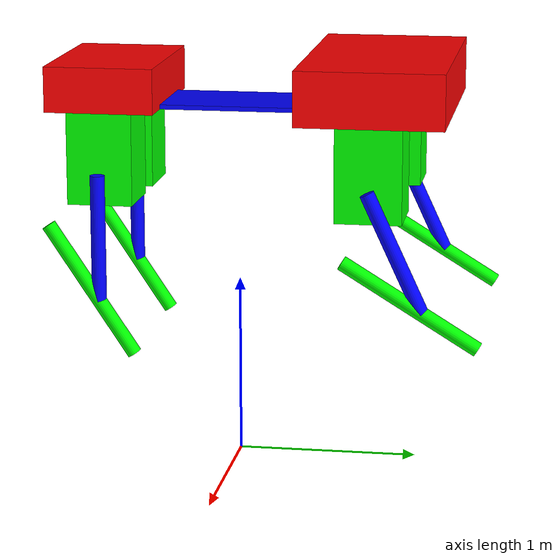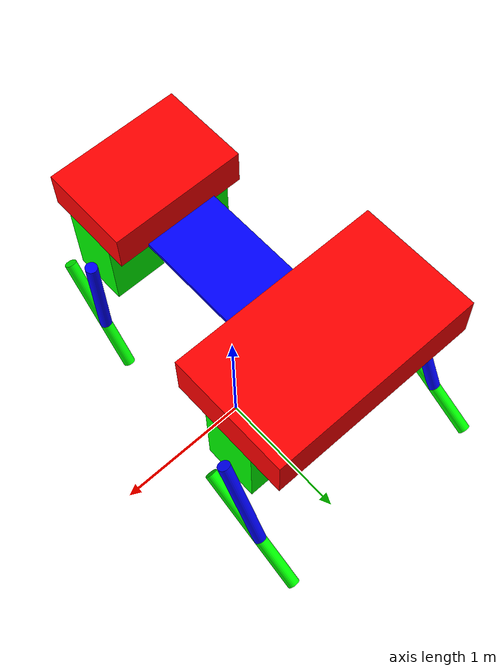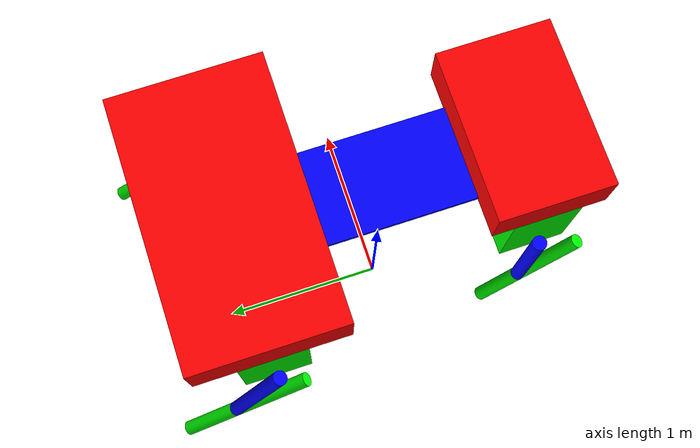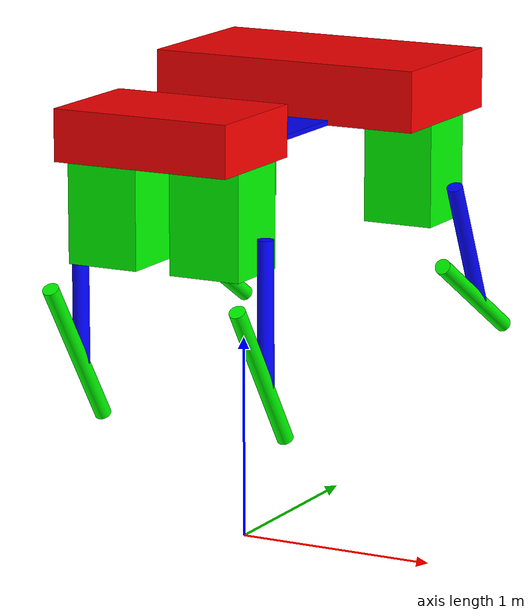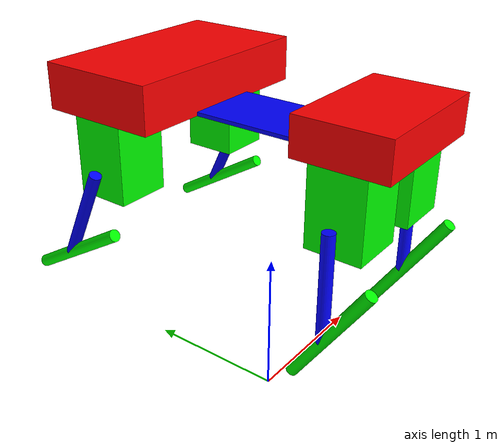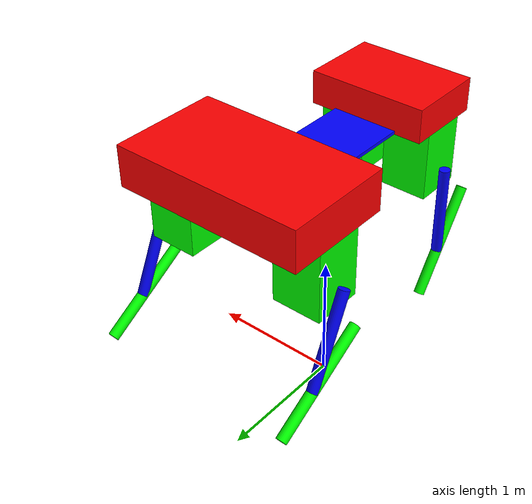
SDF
<sdf version="1.4">
  <model name="tigrillo">
    <static>False</static>
    <link name="body_front">
      <pose>0 0.8 2.15 0 0 0</pose>
      <inertial>
        <mass>0.179</mass>
        <inertia>
          <ixx>0.010889166666666669</ixx>
          <ixy>0</ixy>
          <ixz>0</ixz>
          <iyy>0.030579166666666664</iyy>
          <iyz>0</iyz>
          <izz>0.03878333333333333</izz>
        </inertia>
      </inertial>
      <collision name="body_frontcol">
        <geometry>
          <box>
            <size>1.4 0.8 0.3</size>
          </box>
        </geometry>
      </collision>
      <visual name="body_frontvis">
        <geometry>
          <box>
            <size>1.4 0.8 0.3</size>
          </box>
        </geometry>
        <material>
          <ambient>1 0 0 1</ambient>
          <diffuse>1 0 0 1</diffuse>
          <specular>1 0 0 1</specular>
          <emissive>0 0 0 0</emissive>
        </material>
      </visual>
    </link>
    <link name="body_middle">
      <pose>0 0 2.0125 0 0 0</pose>
      <inertial>
        <mass>0.03</mass>
        <inertia>
          <ixx>0.0016015625000000003</ixx>
          <ixy>0</ixy>
          <ixz>0</ixz>
          <iyy>0.0006265625</iyy>
          <iyz>0</iyz>
          <izz>0.0022250000000000004</izz>
        </inertia>
      </inertial>
      <collision name="body_middlecol">
        <geometry>
          <box>
            <size>0.5 0.8 0.025</size>
          </box>
        </geometry>
      </collision>
      <visual name="body_middlevis">
        <geometry>
          <box>
            <size>0.5 0.8 0.025</size>
          </box>
        </geometry>
        <material>
          <ambient>0 0 1 1</ambient>
          <diffuse>0 0 1 1</diffuse>
          <specular>0 0 1 1</specular>
          <emissive>0 0 0 0</emissive>
        </material>
      </visual>
    </link>
    <link name="body_hind">
      <pose>0 -0.7 2.125 0 0 0</pose>
      <inertial>
        <mass>0.179</mass>
        <inertia>
          <ixx>0.006302291666666666</ixx>
          <ixy>0</ixy>
          <ixz>0</ixz>
          <iyy>0.013014791666666668</iyy>
          <iyz>0</iyz>
          <izz>0.0174525</izz>
        </inertia>
      </inertial>
      <collision name="body_hindcol">
        <geometry>
          <box>
            <size>0.9 0.6 0.25</size>
          </box>
        </geometry>
      </collision>
      <visual name="body_hindvis">
        <geometry>
          <box>
            <size>0.9 0.6 0.25</size>
          </box>
        </geometry>
        <material>
          <ambient>1 0 0 1</ambient>
          <diffuse>1 0 0 1</diffuse>
          <specular>1 0 0 1</specular>
          <emissive>0 0 0 0</emissive>
        </material>
      </visual>
    </link>
    <link name="FLM">
      <pose>-0.52 0.8 1.7469999999999999 0 0 0</pose>
      <inertial>
        <mass>0.067</mass>
        <inertia>
          <ixx>0.0021531343333333333</ixx>
          <ixy>0</ixy>
          <ixz>0</ixz>
          <iyy>0.0021531343333333333</iyy>
          <iyz>0</iyz>
          <izz>0.0014471999999999998</izz>
        </inertia>
      </inertial>
      <collision name="FLM_col">
        <geometry>
          <box>
            <size>0.36 0.36 0.506</size>
          </box>
        </geometry>
      </collision>
      <visual name="FLM_vis">
        <geometry>
          <box>
            <size>0.36 0.36 0.506</size>
          </box>
        </geometry>
        <material>
          <ambient>0 1 0 1</ambient>
          <diffuse>0 1 0 1</diffuse>
          <specular>0 1 0 1</specular>
          <emissive>0 0 0 0</emissive>
        </material>
      </visual>
    </link>
    <link name="FLU">
      <pose>-0.745 0.8 1.67 0.4363323129985824 0 0</pose>
      <inertial>
        <pose>0 0 -0.35 0 0 0</pose>
        <mass>0.0035185837720205686</mass>
        <inertia>
          <ixx>0.00014508293753298144</ixx>
          <ixy>0</ixy>
          <ixz>0</ixz>
          <iyy>0.00014508293753298144</iyy>
          <iyz>0</iyz>
          <izz>2.814867017616455e-06</izz>
        </inertia>
      </inertial>
      <collision name="FLU_col">
        <pose>0 0 -0.35 0 0 0</pose>
        <geometry>
          <cylinder>
            <radius>0.04</radius>
            <length>0.7</length>
          </cylinder>
        </geometry>
      </collision>
      <visual name="FLU_vis">
        <pose>0 0 -0.35 0 0 0</pose>
        <geometry>
          <cylinder>
            <radius>0.04</radius>
            <length>0.7</length>
          </cylinder>
        </geometry>
        <material>
          <ambient>0 0 1 1</ambient>
          <diffuse>0 0 1 1</diffuse>
          <specular>0 0 1 1</specular>
          <emissive>0 0 0 0</emissive>
        </material>
      </visual>
    </link>
    <link name="FLD">
      <pose>-0.745 1.0958327832184898 1.0355845490743452 1.0220178564557332 0 0</pose>
      <inertial>
        <pose>0 0 0.07500000000000001 0 0 0</pose>
        <mass>0.004272566008882119</mass>
        <inertia>
          <ixx>0.0002589531048549971</ixx>
          <ixy>0</ixy>
          <ixz>0</ixz>
          <iyy>0.0002589531048549971</iyy>
          <iyz>0</iyz>
          <izz>3.4180528071056957e-06</izz>
        </inertia>
      </inertial>
      <collision name="FLD_col">
        <pose>0 0 0.07500000000000001 0 0 0</pose>
        <geometry>
          <cylinder>
            <radius>0.04</radius>
            <length>0.85</length>
          </cylinder>
        </geometry>
      </collision>
      <visual name="FLD_vis">
        <pose>0 0 0.07500000000000001 0 0 0</pose>
        <geometry>
          <cylinder>
            <radius>0.04</radius>
            <length>0.85</length>
          </cylinder>
        </geometry>
        <material>
          <ambient>0 1 0 1</ambient>
          <diffuse>0 1 0 1</diffuse>
          <specular>0 1 0 1</specular>
          <emissive>0 0 0 0</emissive>
        </material>
      </visual>
    </link>
    <link name="BLM">
      <pose>-0.27 -0.7 1.7469999999999999 0 0 0</pose>
      <inertial>
        <mass>0.067</mass>
        <inertia>
          <ixx>0.0021531343333333333</ixx>
          <ixy>0</ixy>
          <ixz>0</ixz>
          <iyy>0.0021531343333333333</iyy>
          <iyz>0</iyz>
          <izz>0.0014471999999999998</izz>
        </inertia>
      </inertial>
      <collision name="BLM_col">
        <geometry>
          <box>
            <size>0.36 0.36 0.506</size>
          </box>
        </geometry>
      </collision>
      <visual name="BLM_vis">
        <geometry>
          <box>
            <size>0.36 0.36 0.506</size>
          </box>
        </geometry>
        <material>
          <ambient>0 1 0 1</ambient>
          <diffuse>0 1 0 1</diffuse>
          <specular>0 1 0 1</specular>
          <emissive>0 0 0 0</emissive>
        </material>
      </visual>
    </link>
    <link name="BLU">
      <pose>-0.495 -0.7 1.67 0.0 0 0</pose>
      <inertial>
        <pose>0 0 -0.35 0 0 0</pose>
        <mass>0.0035185837720205686</mass>
        <inertia>
          <ixx>0.00014508293753298144</ixx>
          <ixy>0</ixy>
          <ixz>0</ixz>
          <iyy>0.00014508293753298144</iyy>
          <iyz>0</iyz>
          <izz>2.814867017616455e-06</izz>
        </inertia>
      </inertial>
      <collision name="BLU_col">
        <pose>0 0 -0.35 0 0 0</pose>
        <geometry>
          <cylinder>
            <radius>0.04</radius>
            <length>0.7</length>
          </cylinder>
        </geometry>
      </collision>
      <visual name="BLU_vis">
        <pose>0 0 -0.35 0 0 0</pose>
        <geometry>
          <cylinder>
            <radius>0.04</radius>
            <length>0.7</length>
          </cylinder>
        </geometry>
        <material>
          <ambient>0 0 1 1</ambient>
          <diffuse>0 0 1 1</diffuse>
          <specular>0 0 1 1</specular>
          <emissive>0 0 0 0</emissive>
        </material>
      </visual>
    </link>
    <link name="BLD">
      <pose>-0.495 -0.7 0.97 0.5856855434571508 0 0</pose>
      <inertial>
        <pose>0 0 0.07500000000000001 0 0 0</pose>
        <mass>0.004272566008882119</mass>
        <inertia>
          <ixx>0.0002589531048549971</ixx>
          <ixy>0</ixy>
          <ixz>0</ixz>
          <iyy>0.0002589531048549971</iyy>
          <iyz>0</iyz>
          <izz>3.4180528071056957e-06</izz>
        </inertia>
      </inertial>
      <collision name="BLD_col">
        <pose>0 0 0.07500000000000001 0 0 0</pose>
        <geometry>
          <cylinder>
            <radius>0.04</radius>
            <length>0.85</length>
          </cylinder>
        </geometry>
      </collision>
      <visual name="BLD_vis">
        <pose>0 0 0.07500000000000001 0 0 0</pose>
        <geometry>
          <cylinder>
            <radius>0.04</radius>
            <length>0.85</length>
          </cylinder>
        </geometry>
        <material>
          <ambient>0 1 0 1</ambient>
          <diffuse>0 1 0 1</diffuse>
          <specular>0 1 0 1</specular>
          <emissive>0 0 0 0</emissive>
        </material>
      </visual>
    </link>
    <link name="FRM">
      <pose>0.52 0.8 1.7469999999999999 0 0 0</pose>
      <inertial>
        <mass>0.067</mass>
        <inertia>
          <ixx>0.0021531343333333333</ixx>
          <ixy>0</ixy>
          <ixz>0</ixz>
          <iyy>0.0021531343333333333</iyy>
          <iyz>0</iyz>
          <izz>0.0014471999999999998</izz>
        </inertia>
      </inertial>
      <collision name="FRM_col">
        <geometry>
          <box>
            <size>0.36 0.36 0.506</size>
          </box>
        </geometry>
      </collision>
      <visual name="FRM_vis">
        <geometry>
          <box>
            <size>0.36 0.36 0.506</size>
          </box>
        </geometry>
        <material>
          <ambient>0 1 0 1</ambient>
          <diffuse>0 1 0 1</diffuse>
          <specular>0 1 0 1</specular>
          <emissive>0 0 0 0</emissive>
        </material>
      </visual>
    </link>
    <link name="FRU">
      <pose>0.745 0.8 1.67 0.4363323129985824 0 0</pose>
      <inertial>
        <pose>0 0 -0.35 0 0 0</pose>
        <mass>0.0035185837720205686</mass>
        <inertia>
          <ixx>0.00014508293753298144</ixx>
          <ixy>0</ixy>
          <ixz>0</ixz>
          <iyy>0.00014508293753298144</iyy>
          <iyz>0</iyz>
          <izz>2.814867017616455e-06</izz>
        </inertia>
      </inertial>
      <collision name="FRU_col">
        <pose>0 0 -0.35 0 0 0</pose>
        <geometry>
          <cylinder>
            <radius>0.04</radius>
            <length>0.7</length>
          </cylinder>
        </geometry>
      </collision>
      <visual name="FRU_vis">
        <pose>0 0 -0.35 0 0 0</pose>
        <geometry>
          <cylinder>
            <radius>0.04</radius>
            <length>0.7</length>
          </cylinder>
        </geometry>
        <material>
          <ambient>0 0 1 1</ambient>
          <diffuse>0 0 1 1</diffuse>
          <specular>0 0 1 1</specular>
          <emissive>0 0 0 0</emissive>
        </material>
      </visual>
    </link>
    <link name="FRD">
      <pose>0.745 1.0958327832184898 1.0355845490743452 1.0220178564557332 0 0</pose>
      <inertial>
        <pose>0 0 0.07500000000000001 0 0 0</pose>
        <mass>0.004272566008882119</mass>
        <inertia>
          <ixx>0.0002589531048549971</ixx>
          <ixy>0</ixy>
          <ixz>0</ixz>
          <iyy>0.0002589531048549971</iyy>
          <iyz>0</iyz>
          <izz>3.4180528071056957e-06</izz>
        </inertia>
      </inertial>
      <collision name="FRD_col">
        <pose>0 0 0.07500000000000001 0 0 0</pose>
        <geometry>
          <cylinder>
            <radius>0.04</radius>
            <length>0.85</length>
          </cylinder>
        </geometry>
      </collision>
      <visual name="FRD_vis">
        <pose>0 0 0.07500000000000001 0 0 0</pose>
        <geometry>
          <cylinder>
            <radius>0.04</radius>
            <length>0.85</length>
          </cylinder>
        </geometry>
        <material>
          <ambient>0 1 0 1</ambient>
          <diffuse>0 1 0 1</diffuse>
          <specular>0 1 0 1</specular>
          <emissive>0 0 0 0</emissive>
        </material>
      </visual>
    </link>
    <link name="BRM">
      <pose>0.27 -0.7 1.7469999999999999 0 0 0</pose>
      <inertial>
        <mass>0.067</mass>
        <inertia>
          <ixx>0.0021531343333333333</ixx>
          <ixy>0</ixy>
          <ixz>0</ixz>
          <iyy>0.0021531343333333333</iyy>
          <iyz>0</iyz>
          <izz>0.0014471999999999998</izz>
        </inertia>
      </inertial>
      <collision name="BRM_col">
        <geometry>
          <box>
            <size>0.36 0.36 0.506</size>
          </box>
        </geometry>
      </collision>
      <visual name="BRM_vis">
        <geometry>
          <box>
            <size>0.36 0.36 0.506</size>
          </box>
        </geometry>
        <material>
          <ambient>0 1 0 1</ambient>
          <diffuse>0 1 0 1</diffuse>
          <specular>0 1 0 1</specular>
          <emissive>0 0 0 0</emissive>
        </material>
      </visual>
    </link>
    <link name="BRU">
      <pose>0.495 -0.7 1.67 0.0 0 0</pose>
      <inertial>
        <pose>0 0 -0.35 0 0 0</pose>
        <mass>0.0035185837720205686</mass>
        <inertia>
          <ixx>0.00014508293753298144</ixx>
          <ixy>0</ixy>
          <ixz>0</ixz>
          <iyy>0.00014508293753298144</iyy>
          <iyz>0</iyz>
          <izz>2.814867017616455e-06</izz>
        </inertia>
      </inertial>
      <collision name="BRU_col">
        <pose>0 0 -0.35 0 0 0</pose>
        <geometry>
          <cylinder>
            <radius>0.04</radius>
            <length>0.7</length>
          </cylinder>
        </geometry>
      </collision>
      <visual name="BRU_vis">
        <pose>0 0 -0.35 0 0 0</pose>
        <geometry>
          <cylinder>
            <radius>0.04</radius>
            <length>0.7</length>
          </cylinder>
        </geometry>
        <material>
          <ambient>0 0 1 1</ambient>
          <diffuse>0 0 1 1</diffuse>
          <specular>0 0 1 1</specular>
          <emissive>0 0 0 0</emissive>
        </material>
      </visual>
    </link>
    <link name="BRD">
      <pose>0.495 -0.7 0.97 0.5856855434571508 0 0</pose>
      <inertial>
        <pose>0 0 0.07500000000000001 0 0 0</pose>
        <mass>0.004272566008882119</mass>
        <inertia>
          <ixx>0.0002589531048549971</ixx>
          <ixy>0</ixy>
          <ixz>0</ixz>
          <iyy>0.0002589531048549971</iyy>
          <iyz>0</iyz>
          <izz>3.4180528071056957e-06</izz>
        </inertia>
      </inertial>
      <collision name="BRD_col">
        <pose>0 0 0.07500000000000001 0 0 0</pose>
        <geometry>
          <cylinder>
            <radius>0.04</radius>
            <length>0.85</length>
          </cylinder>
        </geometry>
      </collision>
      <visual name="BRD_vis">
        <pose>0 0 0.07500000000000001 0 0 0</pose>
        <geometry>
          <cylinder>
            <radius>0.04</radius>
            <length>0.85</length>
          </cylinder>
        </geometry>
        <material>
          <ambient>0 1 0 1</ambient>
          <diffuse>0 1 0 1</diffuse>
          <specular>0 1 0 1</specular>
          <emissive>0 0 0 0</emissive>
        </material>
      </visual>
    </link>
    <joint name="body_front_J" type="fixed">
      <parent>body_middle</parent>
      <child>body_front</child>
    </joint>
    <joint name="body_hind_J" type="fixed">
      <parent>body_middle</parent>
      <child>body_hind</child>
    </joint>
    <joint name="FLMJ" type="fixed">
      <parent>body_front</parent>
      <child>FLM</child>
    </joint>
    <joint name="FLUJ" type="revolute">
      <parent>FLM</parent>
      <child>FLU</child>
      <axis>
        <xyz>1 0 0</xyz>
        <dynamics>
          <damping>0.2</damping>
        </dynamics>
        <limit>
          <lower>-2.007128639793479</lower>
          <upper>1.1344640137963142</upper>
        </limit>
      </axis>
    </joint>
    <joint name="FLDJ" type="fixed">
      <parent>FLU</parent>
      <child>FLD</child>
      <axis>
        <xyz>1 0 0</xyz>
        <dynamics>
          <damping>0.2</damping>
          <spring_stiffness>233.9349247139039</spring_stiffness>
        </dynamics>
        <limit>
          <lower>-0.1</lower>
          <upper>1.5707963267948966</upper>
        </limit>
      </axis>
    </joint>
    <joint name="BLMJ" type="fixed">
      <parent>body_hind</parent>
      <child>BLM</child>
    </joint>
    <joint name="BLUJ" type="revolute">
      <parent>BLM</parent>
      <child>BLU</child>
      <axis>
        <xyz>1 0 0</xyz>
        <dynamics>
          <damping>0.2</damping>
        </dynamics>
        <limit>
          <lower>-1.5707963267948966</lower>
          <upper>1.5707963267948966</upper>
        </limit>
      </axis>
    </joint>
    <joint name="BLDJ" type="fixed">
      <parent>BLU</parent>
      <child>BLD</child>
      <axis>
        <xyz>1 0 0</xyz>
        <dynamics>
          <damping>0.2</damping>
          <spring_stiffness>233.9349247139039</spring_stiffness>
        </dynamics>
        <limit>
          <lower>-0.1</lower>
          <upper>1.5707963267948966</upper>
        </limit>
      </axis>
    </joint>
    <joint name="FRMJ" type="fixed">
      <parent>body_front</parent>
      <child>FRM</child>
    </joint>
    <joint name="FRUJ" type="revolute">
      <parent>FRM</parent>
      <child>FRU</child>
      <axis>
        <xyz>1 0 0</xyz>
        <dynamics>
          <damping>0.2</damping>
        </dynamics>
        <limit>
          <lower>-2.007128639793479</lower>
          <upper>1.1344640137963142</upper>
        </limit>
      </axis>
    </joint>
    <joint name="FRDJ" type="fixed">
      <parent>FRU</parent>
      <child>FRD</child>
      <axis>
        <xyz>1 0 0</xyz>
        <dynamics>
          <damping>0.2</damping>
          <spring_stiffness>233.9349247139039</spring_stiffness>
        </dynamics>
        <limit>
          <lower>-0.1</lower>
          <upper>1.5707963267948966</upper>
        </limit>
      </axis>
    </joint>
    <joint name="BRMJ" type="fixed">
      <parent>body_hind</parent>
      <child>BRM</child>
    </joint>
    <joint name="BRUJ" type="revolute">
      <parent>BRM</parent>
      <child>BRU</child>
      <axis>
        <xyz>1 0 0</xyz>
        <dynamics>
          <damping>0.2</damping>
        </dynamics>
        <limit>
          <lower>-1.5707963267948966</lower>
          <upper>1.5707963267948966</upper>
        </limit>
      </axis>
    </joint>
    <joint name="BRDJ" type="fixed">
      <parent>BRU</parent>
      <child>BRD</child>
      <axis>
        <xyz>1 0 0</xyz>
        <dynamics>
          <damping>0.2</damping>
          <spring_stiffness>233.9349247139039</spring_stiffness>
        </dynamics>
        <limit>
          <lower>-0.1</lower>
          <upper>1.5707963267948966</upper>
        </limit>
      </axis>
    </joint>
  </model>
</sdf>
